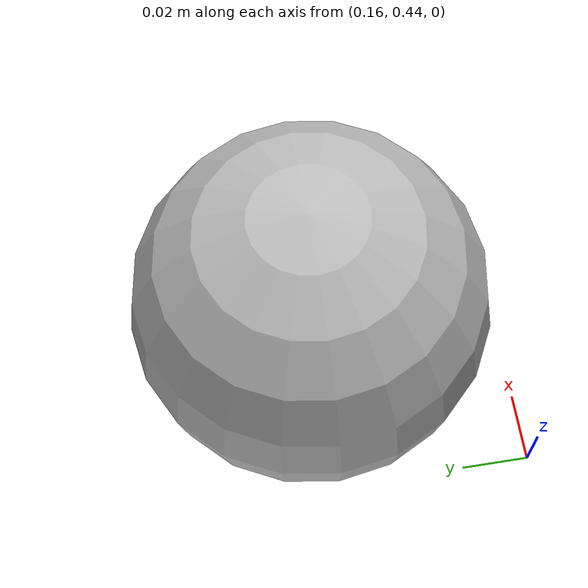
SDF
<?xml version="1.0" ?>
<sdf version="1.7">
  <model name="ball">

    <link name="sphere_link">
      <pose>0.2 0.5 0.05 0 0 0</pose>
      <visual name="visual3">
        <geometry>
          <sphere>
            <radius>0.05</radius>
          </sphere>
        </geometry>
      </visual>

      <collision name="collision3">
        <geometry>
          <sphere>
            <radius>0.05</radius>
          </sphere>
        </geometry>
      </collision>

      <inertial>
        <mass>10.0</mass>
        <inertia>
          <ixx>0.1</ixx>
          <ixy>0.0</ixy>
          <ixz>0.0</ixz>
          <iyy>0.1</iyy>
          <iyz>0.0</iyz>
          <izz>0.1</izz>
        </inertia>
      </inertial>
    </link>

    <link name="false_body1"/>

    <link name="false_body2"/>

    <joint name="weld_base" type="fixed">
      <child>false_body2</child>
      <parent>world</parent>
      <pose>0.0 0.5 0.05 0 0 0</pose>
    </joint>

    <joint name="prismatic_x_joint" type="prismatic">
      <child>false_body1</child>
      <parent>false_body2</parent>
      <axis>
        <xyz>1 0 0</xyz>
         <limit>
          <lower>-5.0</lower>
          <upper>5.0</upper>
          <velocity>1.0</velocity>
        </limit>
      </axis>
    </joint>

    <joint name="prismatic_y_joint" type="prismatic">
      <child>sphere_link</child>
      <parent>false_body1</parent>
      <axis>
        <xyz>0 1 0</xyz>
         <limit>
          <lower>-5.0</lower>
          <upper>5.0</upper>
          <velocity>1.0</velocity>
        </limit>
      </axis>
    </joint>

  </model>
</sdf>
